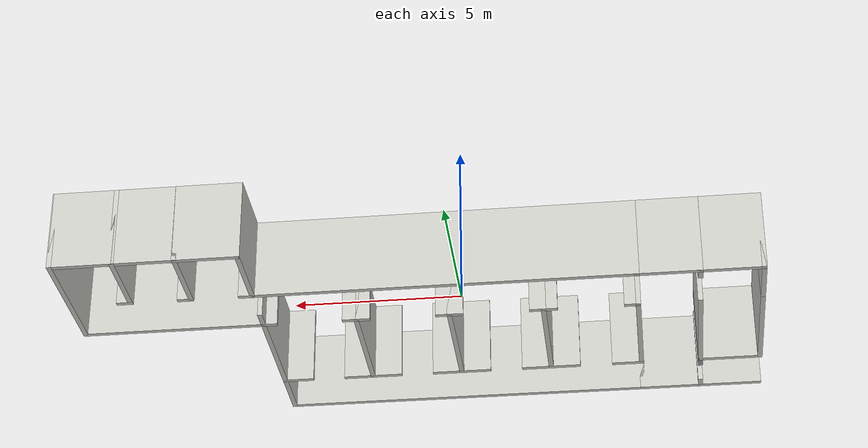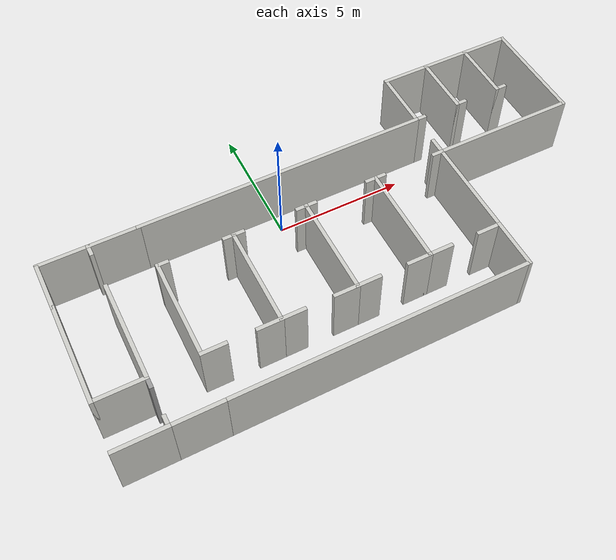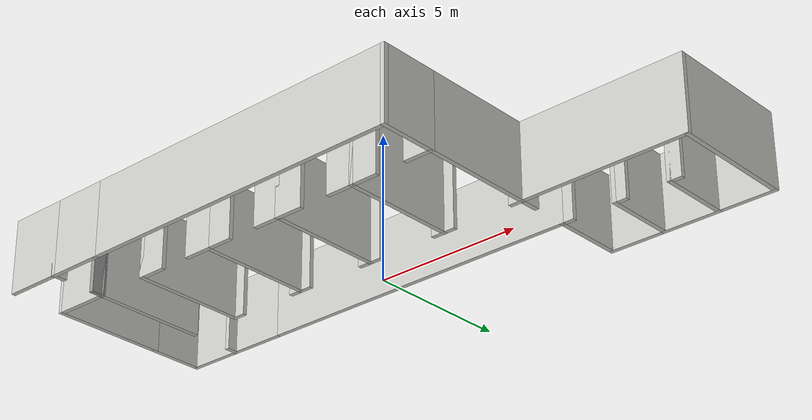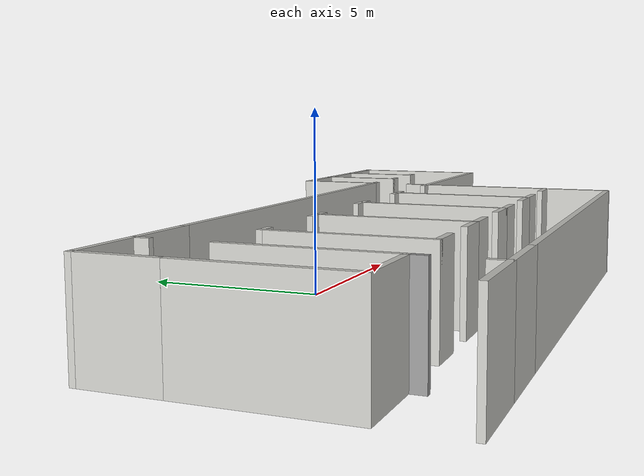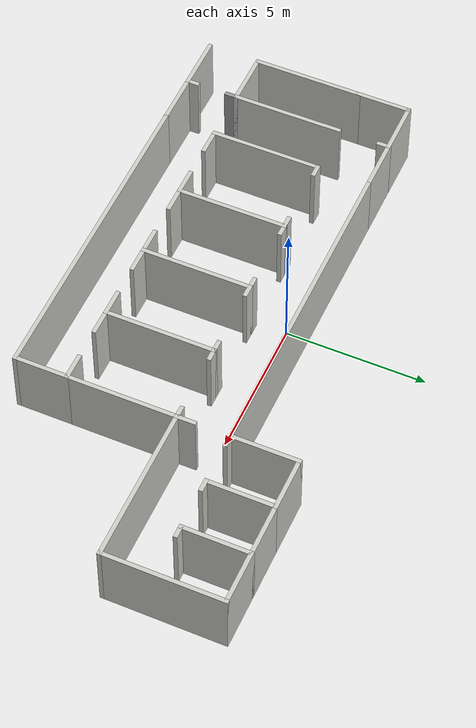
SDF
<?xml version='1.0'?>
<sdf version='1.7'>
  <model name='room'>
    <pose>1.425 -1.87 0 0 -0 0</pose>
    <link name='Wall_108'>
      <collision name='Wall_108_Collision'>
        <geometry>
          <box>
            <size>0.5 0.15 2.5</size>
          </box>
        </geometry>
        <pose>0 0 1.25 0 -0 0</pose>
      </collision>
      <visual name='Wall_108_Visual'>
        <pose>0 0 1.25 0 -0 0</pose>
        <geometry>
          <box>
            <size>0.5 0.15 2.5</size>
          </box>
        </geometry>
        <material>
          <script>
            <uri>file://media/materials/scripts/gazebo.material</uri>
            <name>Gazebo/CeilingTiled</name>
          </script>
          <ambient>0.333333 1 0 1</ambient>
        </material>
        <meta>
          <layer>0</layer>
        </meta>
      </visual>
      <pose>4.95 2.6 0 0 -0 0</pose>
    </link>
    <link name='Wall_11'>
      <collision name='Wall_11_Collision'>
        <geometry>
          <box>
            <size>4 0.15 2.5</size>
          </box>
        </geometry>
        <pose>0 0 1.25 0 -0 0</pose>
      </collision>
      <visual name='Wall_11_Visual'>
        <pose>0 0 1.25 0 -0 0</pose>
        <geometry>
          <box>
            <size>4 0.15 2.5</size>
          </box>
        </geometry>
        <material>
          <script>
            <uri>file://media/materials/scripts/gazebo.material</uri>
            <name>Gazebo/CeilingTiled</name>
          </script>
          <ambient>0.666667 0 0.498039 1</ambient>
        </material>
        <meta>
          <layer>0</layer>
        </meta>
      </visual>
      <pose>4.775 -1.175 0 0 -0 -1.5708</pose>
    </link>
    <link name='Wall_110'>
      <collision name='Wall_110_Collision'>
        <geometry>
          <box>
            <size>0.5 0.15 2.5</size>
          </box>
        </geometry>
        <pose>0 0 1.25 0 -0 0</pose>
      </collision>
      <visual name='Wall_110_Visual'>
        <pose>0 0 1.25 0 -0 0</pose>
        <geometry>
          <box>
            <size>0.5 0.15 2.5</size>
          </box>
        </geometry>
        <material>
          <script>
            <uri>file://media/materials/scripts/gazebo.material</uri>
            <name>Gazebo/CeilingTiled</name>
          </script>
          <ambient>1 0 0.498039 1</ambient>
        </material>
        <meta>
          <layer>0</layer>
        </meta>
      </visual>
      <pose>6.8 2.6 0 0 -0 0</pose>
    </link>
    <link name='Wall_112'>
      <collision name='Wall_112_Collision'>
        <geometry>
          <box>
            <size>0.5 0.15 2.5</size>
          </box>
        </geometry>
        <pose>0 0 1.25 0 -0 0</pose>
      </collision>
      <visual name='Wall_112_Visual'>
        <pose>0 0 1.25 0 -0 0</pose>
        <geometry>
          <box>
            <size>0.5 0.15 2.5</size>
          </box>
        </geometry>
        <material>
          <script>
            <uri>file://media/materials/scripts/gazebo.material</uri>
            <name>Gazebo/CeilingTiled</name>
          </script>
          <ambient>0 1 1 1</ambient>
        </material>
        <meta>
          <layer>0</layer>
        </meta>
      </visual>
      <pose>8.65 2.6 0 0 -0 0</pose>
    </link>
    <link name='Wall_114'>
      <collision name='Wall_114_Collision'>
        <geometry>
          <box>
            <size>4.35 0.15 2.5</size>
          </box>
        </geometry>
        <pose>0 0 1.25 0 -0 0</pose>
      </collision>
      <visual name='Wall_114_Visual'>
        <pose>0 0 1.25 0 -0 0</pose>
        <geometry>
          <box>
            <size>4.35 0.15 2.5</size>
          </box>
        </geometry>
        <material>
          <script>
            <uri>file://media/materials/scripts/gazebo.material</uri>
            <name>Gazebo/CeilingTiled</name>
          </script>
          <ambient>0 0 0 1</ambient>
        </material>
        <meta>
          <layer>0</layer>
        </meta>
      </visual>
      <pose>10.325 2.85 0 0 -0 -1.5708</pose>
    </link>
    <link name='Wall_15'>
      <collision name='Wall_15_Collision'>
        <geometry>
          <box>
            <size>4 0.15 2.5</size>
          </box>
        </geometry>
        <pose>0 0 1.25 0 -0 0</pose>
      </collision>
      <visual name='Wall_15_Visual'>
        <pose>0 0 1.25 0 -0 0</pose>
        <geometry>
          <box>
            <size>4 0.15 2.5</size>
          </box>
        </geometry>
        <material>
          <script>
            <uri>file://media/materials/scripts/gazebo.material</uri>
            <name>Gazebo/CeilingTiled</name>
          </script>
          <ambient>1 0 0 1</ambient>
        </material>
        <meta>
          <layer>0</layer>
        </meta>
      </visual>
      <pose>-6.625 -1.175 0 0 -0 -1.5708</pose>
    </link>
    <link name='Wall_151'>
      <collision name='Wall_151_Collision'>
        <geometry>
          <box>
            <size>2 0.15 2.5</size>
          </box>
        </geometry>
        <pose>0 0 1.25 0 -0 0</pose>
      </collision>
      <visual name='Wall_151_Visual'>
        <pose>0 0 1.25 0 -0 0</pose>
        <geometry>
          <box>
            <size>2 0.15 2.5</size>
          </box>
        </geometry>
        <material>
          <script>
            <uri>file://media/materials/scripts/gazebo.material</uri>
            <name>Gazebo/CeilingTiled</name>
          </script>
          <ambient>0 0 0 1</ambient>
        </material>
        <meta>
          <layer>0</layer>
        </meta>
      </visual>
      <pose>-9.4 2.6 0 0 -0 3.14159</pose>
    </link>
    <link name='Wall_153'>
      <collision name='Wall_153_Collision'>
        <geometry>
          <box>
            <size>2 0.15 2.5</size>
          </box>
        </geometry>
        <pose>0 0 1.25 0 -0 0</pose>
      </collision>
      <visual name='Wall_153_Visual'>
        <pose>0 0 1.25 0 -0 0</pose>
        <geometry>
          <box>
            <size>2 0.15 2.5</size>
          </box>
        </geometry>
        <material>
          <script>
            <uri>file://media/materials/scripts/gazebo.material</uri>
            <name>Gazebo/CeilingTiled</name>
          </script>
          <ambient>0 0 0 1</ambient>
        </material>
        <meta>
          <layer>0</layer>
        </meta>
      </visual>
      <pose>-10.325 1.675 0 0 -0 -1.5708</pose>
    </link>
    <link name='Wall_159'>
      <collision name='Wall_159_Collision'>
        <geometry>
          <box>
            <size>2 0.15 2.5</size>
          </box>
        </geometry>
        <pose>0 0 1.25 0 -0 0</pose>
      </collision>
      <visual name='Wall_159_Visual'>
        <pose>0 0 1.25 0 -0 0</pose>
        <geometry>
          <box>
            <size>2 0.15 2.5</size>
          </box>
        </geometry>
        <material>
          <script>
            <uri>file://media/materials/scripts/gazebo.material</uri>
            <name>Gazebo/CeilingTiled</name>
          </script>
          <ambient>0 0 0 1</ambient>
        </material>
        <meta>
          <layer>0</layer>
        </meta>
      </visual>
      <pose>-9.4 -4.95 0 0 -0 3.14159</pose>
    </link>
    <link name='Wall_163'>
      <collision name='Wall_163_Collision'>
        <geometry>
          <box>
            <size>2 0.15 2.5</size>
          </box>
        </geometry>
        <pose>0 0 1.25 0 -0 0</pose>
      </collision>
      <visual name='Wall_163_Visual'>
        <pose>0 0 1.25 0 -0 0</pose>
        <geometry>
          <box>
            <size>2 0.15 2.5</size>
          </box>
        </geometry>
        <material>
          <script>
            <uri>file://media/materials/scripts/gazebo.material</uri>
            <name>Gazebo/CeilingTiled</name>
          </script>
          <ambient>0 0 0 1</ambient>
        </material>
        <meta>
          <layer>0</layer>
        </meta>
      </visual>
      <pose>-9.4 -3.1 0 0 -0 0</pose>
    </link>
    <link name='Wall_165'>
      <collision name='Wall_165_Collision'>
        <geometry>
          <box>
            <size>0.5 0.15 2.5</size>
          </box>
        </geometry>
        <pose>0 0 1.25 0 -0 0</pose>
      </collision>
      <visual name='Wall_165_Visual'>
        <pose>0 0 1.25 0 -0 0</pose>
        <geometry>
          <box>
            <size>0.5 0.15 2.5</size>
          </box>
        </geometry>
        <material>
          <script>
            <uri>file://media/materials/scripts/gazebo.material</uri>
            <name>Gazebo/Grey</name>
          </script>
          <ambient>0 0 0 1</ambient>
        </material>
        <meta>
          <layer>0</layer>
        </meta>
      </visual>
      <pose>-8.475 -3.275 0 0 -0 -1.5708</pose>
    </link>
    <link name='Wall_167'>
      <collision name='Wall_167_Collision'>
        <geometry>
          <box>
            <size>0.5 0.15 2.5</size>
          </box>
        </geometry>
        <pose>0 0 1.25 0 -0 0</pose>
      </collision>
      <visual name='Wall_167_Visual'>
        <pose>0 0 1.25 0 -0 0</pose>
        <geometry>
          <box>
            <size>0.5 0.15 2.5</size>
          </box>
        </geometry>
        <material>
          <script>
            <uri>file://media/materials/scripts/gazebo.material</uri>
            <name>Gazebo/CeilingTiled</name>
          </script>
          <ambient>0 0 0 1</ambient>
        </material>
        <meta>
          <layer>0</layer>
        </meta>
      </visual>
      <pose>-8.475 -4.775 0 0 -0 1.5708</pose>
    </link>
    <link name='Wall_169'>
      <collision name='Wall_169_Collision'>
        <geometry>
          <box>
            <size>4 0.15 2.5</size>
          </box>
        </geometry>
        <pose>0 0 1.25 0 -0 0</pose>
      </collision>
      <visual name='Wall_169_Visual'>
        <pose>0 0 1.25 0 -0 0</pose>
        <geometry>
          <box>
            <size>4 0.15 2.5</size>
          </box>
        </geometry>
        <material>
          <script>
            <uri>file://media/materials/scripts/gazebo.material</uri>
            <name>Gazebo/CeilingTiled</name>
          </script>
          <ambient>0 0 0 1</ambient>
        </material>
        <meta>
          <layer>0</layer>
        </meta>
      </visual>
      <pose>-8.475 -1.175 0 0 -0 -1.5708</pose>
    </link>
    <link name='Wall_171'>
      <collision name='Wall_171_Collision'>
        <geometry>
          <box>
            <size>4 0.15 2.5</size>
          </box>
        </geometry>
        <pose>0 0 1.25 0 -0 0</pose>
      </collision>
      <visual name='Wall_171_Visual'>
        <pose>0 0 1.25 0 -0 0</pose>
        <geometry>
          <box>
            <size>4 0.15 2.5</size>
          </box>
        </geometry>
        <material>
          <script>
            <uri>file://media/materials/scripts/gazebo.material</uri>
            <name>Gazebo/CeilingTiled</name>
          </script>
          <ambient>0 0 0 1</ambient>
        </material>
        <meta>
          <layer>0</layer>
        </meta>
      </visual>
      <pose>-10.325 -1.175 0 0 -0 -1.5708</pose>
    </link>
    <link name='Wall_173'>
      <collision name='Wall_173_Collision'>
        <geometry>
          <box>
            <size>0.5 0.15 2.5</size>
          </box>
        </geometry>
        <pose>0 0 1.25 0 -0 0</pose>
      </collision>
      <visual name='Wall_173_Visual'>
        <pose>0 0 1.25 0 -0 0</pose>
        <geometry>
          <box>
            <size>0.5 0.15 2.5</size>
          </box>
        </geometry>
        <material>
          <script>
            <uri>file://media/materials/scripts/gazebo.material</uri>
            <name>Gazebo/CeilingTiled</name>
          </script>
          <ambient>0 0 0 1</ambient>
        </material>
        <meta>
          <layer>0</layer>
        </meta>
      </visual>
      <pose>-8.475 2.425 0 0 -0 -1.5708</pose>
    </link>
    <link name='Wall_18'>
      <collision name='Wall_18_Collision'>
        <geometry>
          <box>
            <size>2 0.15 2.5</size>
          </box>
        </geometry>
        <pose>0 0 1.25 0 -0 0</pose>
      </collision>
      <visual name='Wall_18_Visual'>
        <pose>0 0 1.25 0 -0 0</pose>
        <geometry>
          <box>
            <size>2 0.15 2.5</size>
          </box>
        </geometry>
        <material>
          <script>
            <uri>file://media/materials/scripts/gazebo.material</uri>
            <name>Gazebo/CeilingTiled</name>
          </script>
          <ambient>0 0 0 1</ambient>
        </material>
        <meta>
          <layer>0</layer>
        </meta>
      </visual>
      <pose>4.775 -4.025 0 0 -0 -1.5708</pose>
    </link>
    <link name='Wall_2'>
      <collision name='Wall_2_Collision'>
        <geometry>
          <box>
            <size>4 0.15 2.5</size>
          </box>
        </geometry>
        <pose>0 0 1.25 0 -0 0</pose>
      </collision>
      <visual name='Wall_2_Visual'>
        <pose>0 0 1.25 0 -0 0</pose>
        <geometry>
          <box>
            <size>4 0.15 2.5</size>
          </box>
        </geometry>
        <material>
          <script>
            <uri>file://media/materials/scripts/gazebo.material</uri>
            <name>Gazebo/CeilingTiled</name>
          </script>
          <ambient>0.333333 0.666667 1 1</ambient>
        </material>
        <meta>
          <layer>0</layer>
        </meta>
      </visual>
      <pose>-3.775 -1.175 0 0 -0 -1.5708</pose>
    </link>
    <link name='Wall_22'>
      <collision name='Wall_22_Collision'>
        <geometry>
          <box>
            <size>11.55 0.15 2.5</size>
          </box>
        </geometry>
        <pose>0 0 1.25 0 -0 0</pose>
      </collision>
      <visual name='Wall_22_Visual'>
        <pose>0 0 1.25 0 -0 0</pose>
        <geometry>
          <box>
            <size>11.55 0.15 2.5</size>
          </box>
        </geometry>
        <material>
          <script>
            <uri>file://media/materials/scripts/gazebo.material</uri>
            <name>Gazebo/CeilingTiled</name>
          </script>
          <ambient>0 0 0 1</ambient>
        </material>
        <meta>
          <layer>0</layer>
        </meta>
      </visual>
      <pose>-0.925 -4.95 0 0 -0 0</pose>
    </link>
    <link name='Wall_27'>
      <collision name='Wall_27_Collision'>
        <geometry>
          <box>
            <size>11.55 0.15 2.5</size>
          </box>
        </geometry>
        <pose>0 0 1.25 0 -0 0</pose>
      </collision>
      <visual name='Wall_27_Visual'>
        <pose>0 0 1.25 0 -0 0</pose>
        <geometry>
          <box>
            <size>11.55 0.15 2.5</size>
          </box>
        </geometry>
        <material>
          <script>
            <uri>file://media/materials/scripts/gazebo.material</uri>
            <name>Gazebo/CeilingTiled</name>
          </script>
          <ambient>0 0 0 1</ambient>
        </material>
        <meta>
          <layer>0</layer>
        </meta>
      </visual>
      <pose>-0.925 2.6 0 0 -0 3.14159</pose>
    </link>
    <link name='Wall_32'>
      <collision name='Wall_32_Collision'>
        <geometry>
          <box>
            <size>2 0.15 2.5</size>
          </box>
        </geometry>
        <pose>0 0 1.25 0 -0 0</pose>
      </collision>
      <visual name='Wall_32_Visual'>
        <pose>0 0 1.25 0 -0 0</pose>
        <geometry>
          <box>
            <size>2 0.15 2.5</size>
          </box>
        </geometry>
        <material>
          <script>
            <uri>file://media/materials/scripts/gazebo.material</uri>
            <name>Gazebo/CeilingTiled</name>
          </script>
          <ambient>0 0 0 1</ambient>
        </material>
        <meta>
          <layer>0</layer>
        </meta>
      </visual>
      <pose>-7.55 2.6 0 0 -0 3.14159</pose>
    </link>
    <link name='Wall_34'>
      <collision name='Wall_34_Collision'>
        <geometry>
          <box>
            <size>2 0.15 2.5</size>
          </box>
        </geometry>
        <pose>0 0 1.25 0 -0 0</pose>
      </collision>
      <visual name='Wall_34_Visual'>
        <pose>0 0 1.25 0 -0 0</pose>
        <geometry>
          <box>
            <size>2 0.15 2.5</size>
          </box>
        </geometry>
        <material>
          <script>
            <uri>file://media/materials/scripts/gazebo.material</uri>
            <name>Gazebo/CeilingTiled</name>
          </script>
          <ambient>0 0 0 1</ambient>
        </material>
        <meta>
          <layer>0</layer>
        </meta>
      </visual>
      <pose>-7.55 -4.95 0 0 -0 3.14159</pose>
    </link>
    <link name='Wall_37'>
      <collision name='Wall_37_Collision'>
        <geometry>
          <box>
            <size>1 0.15 2.5</size>
          </box>
        </geometry>
        <pose>0 0 1.25 0 -0 0</pose>
      </collision>
      <visual name='Wall_37_Visual'>
        <pose>0 0 1.25 0 -0 0</pose>
        <geometry>
          <box>
            <size>1 0.15 2.5</size>
          </box>
        </geometry>
        <material>
          <script>
            <uri>file://media/materials/scripts/gazebo.material</uri>
            <name>Gazebo/CeilingTiled</name>
          </script>
          <ambient>1 0 0 1</ambient>
        </material>
        <meta>
          <layer>0</layer>
        </meta>
      </visual>
      <pose>-6.2 -3.1 0 0 -0 0</pose>
    </link>
    <link name='Wall_39'>
      <collision name='Wall_39_Collision'>
        <geometry>
          <box>
            <size>1 0.15 2.5</size>
          </box>
        </geometry>
        <pose>0 0 1.25 0 -0 0</pose>
      </collision>
      <visual name='Wall_39_Visual'>
        <pose>0 0 1.25 0 -0 0</pose>
        <geometry>
          <box>
            <size>1 0.15 2.5</size>
          </box>
        </geometry>
        <material>
          <script>
            <uri>file://media/materials/scripts/gazebo.material</uri>
            <name>Gazebo/CeilingTiled</name>
          </script>
          <ambient>1 0 0 1</ambient>
        </material>
        <meta>
          <layer>0</layer>
        </meta>
      </visual>
      <pose>-4.2 -3.1 0 0 -0 3.14159</pose>
    </link>
    <link name='Wall_4'>
      <collision name='Wall_4_Collision'>
        <geometry>
          <box>
            <size>4 0.15 2.5</size>
          </box>
        </geometry>
        <pose>0 0 1.25 0 -0 0</pose>
      </collision>
      <visual name='Wall_4_Visual'>
        <pose>0 0 1.25 0 -0 0</pose>
        <geometry>
          <box>
            <size>4 0.15 2.5</size>
          </box>
        </geometry>
        <material>
          <script>
            <uri>file://media/materials/scripts/gazebo.material</uri>
            <name>Gazebo/CeilingTiled</name>
          </script>
          <ambient>1 0.666667 0 1</ambient>
        </material>
        <meta>
          <layer>0</layer>
        </meta>
      </visual>
      <pose>-0.925 -1.175 0 0 -0 1.5708</pose>
    </link>
    <link name='Wall_41'>
      <collision name='Wall_41_Collision'>
        <geometry>
          <box>
            <size>1 0.15 2.5</size>
          </box>
        </geometry>
        <pose>0 0 1.25 0 -0 0</pose>
      </collision>
      <visual name='Wall_41_Visual'>
        <pose>0 0 1.25 0 -0 0</pose>
        <geometry>
          <box>
            <size>1 0.15 2.5</size>
          </box>
        </geometry>
        <material>
          <script>
            <uri>file://media/materials/scripts/gazebo.material</uri>
            <name>Gazebo/CeilingTiled</name>
          </script>
          <ambient>0.333333 0.666667 1 1</ambient>
        </material>
        <meta>
          <layer>0</layer>
        </meta>
      </visual>
      <pose>-3.35 -3.1 0 0 -0 0</pose>
    </link>
    <link name='Wall_43'>
      <collision name='Wall_43_Collision'>
        <geometry>
          <box>
            <size>1 0.15 2.5</size>
          </box>
        </geometry>
        <pose>0 0 1.25 0 -0 0</pose>
      </collision>
      <visual name='Wall_43_Visual'>
        <pose>0 0 1.25 0 -0 0</pose>
        <geometry>
          <box>
            <size>1 0.15 2.5</size>
          </box>
        </geometry>
        <material>
          <script>
            <uri>file://media/materials/scripts/gazebo.material</uri>
            <name>Gazebo/CeilingTiled</name>
          </script>
          <ambient>0.333333 0.666667 1 1</ambient>
        </material>
        <meta>
          <layer>0</layer>
        </meta>
      </visual>
      <pose>-1.35 -3.1 0 0 -0 3.14159</pose>
    </link>
    <link name='Wall_45'>
      <collision name='Wall_45_Collision'>
        <geometry>
          <box>
            <size>1 0.15 2.5</size>
          </box>
        </geometry>
        <pose>0 0 1.25 0 -0 0</pose>
      </collision>
      <visual name='Wall_45_Visual'>
        <pose>0 0 1.25 0 -0 0</pose>
        <geometry>
          <box>
            <size>1 0.15 2.5</size>
          </box>
        </geometry>
        <material>
          <script>
            <uri>file://media/materials/scripts/gazebo.material</uri>
            <name>Gazebo/CeilingTiled</name>
          </script>
          <ambient>1 0.666667 0 1</ambient>
        </material>
        <meta>
          <layer>0</layer>
        </meta>
      </visual>
      <pose>-0.5 -3.1 0 0 -0 0</pose>
    </link>
    <link name='Wall_47'>
      <collision name='Wall_47_Collision'>
        <geometry>
          <box>
            <size>1 0.15 2.5</size>
          </box>
        </geometry>
        <pose>0 0 1.25 0 -0 0</pose>
      </collision>
      <visual name='Wall_47_Visual'>
        <pose>0 0 1.25 0 -0 0</pose>
        <geometry>
          <box>
            <size>1 0.15 2.5</size>
          </box>
        </geometry>
        <material>
          <script>
            <uri>file://media/materials/scripts/gazebo.material</uri>
            <name>Gazebo/CeilingTiled</name>
          </script>
          <ambient>1 0.666667 0 1</ambient>
        </material>
        <meta>
          <layer>0</layer>
        </meta>
      </visual>
      <pose>1.5 -3.1 0 0 -0 3.14159</pose>
    </link>
    <link name='Wall_49'>
      <collision name='Wall_49_Collision'>
        <geometry>
          <box>
            <size>1 0.15 2.5</size>
          </box>
        </geometry>
        <pose>0 0 1.25 0 -0 0</pose>
      </collision>
      <visual name='Wall_49_Visual'>
        <pose>0 0 1.25 0 -0 0</pose>
        <geometry>
          <box>
            <size>1 0.15 2.5</size>
          </box>
        </geometry>
        <material>
          <script>
            <uri>file://media/materials/scripts/gazebo.material</uri>
            <name>Gazebo/CeilingTiled</name>
          </script>
          <ambient>0.666667 0 0.498039 1</ambient>
        </material>
        <meta>
          <layer>0</layer>
        </meta>
      </visual>
      <pose>2.35 -3.1 0 0 -0 0</pose>
    </link>
    <link name='Wall_51'>
      <collision name='Wall_51_Collision'>
        <geometry>
          <box>
            <size>1 0.15 2.5</size>
          </box>
        </geometry>
        <pose>0 0 1.25 0 -0 0</pose>
      </collision>
      <visual name='Wall_51_Visual'>
        <pose>0 0 1.25 0 -0 0</pose>
        <geometry>
          <box>
            <size>1 0.15 2.5</size>
          </box>
        </geometry>
        <material>
          <script>
            <uri>file://media/materials/scripts/gazebo.material</uri>
            <name>Gazebo/CeilingTiled</name>
          </script>
          <ambient>0.666667 0 0.498039 1</ambient>
        </material>
        <meta>
          <layer>0</layer>
        </meta>
      </visual>
      <pose>4.35 -3.1 0 0 -0 3.14159</pose>
    </link>
    <link name='Wall_53'>
      <collision name='Wall_53_Collision'>
        <geometry>
          <box>
            <size>0.5 0.15 2.5</size>
          </box>
        </geometry>
        <pose>0 0 1.25 0 -0 0</pose>
      </collision>
      <visual name='Wall_53_Visual'>
        <pose>0 0 1.25 0 -0 0</pose>
        <geometry>
          <box>
            <size>0.5 0.15 2.5</size>
          </box>
        </geometry>
        <material>
          <script>
            <uri>file://media/materials/scripts/gazebo.material</uri>
            <name>Gazebo/CeilingTiled</name>
          </script>
          <ambient>1 0 0 1</ambient>
        </material>
        <meta>
          <layer>0</layer>
        </meta>
      </visual>
      <pose>-3.95 0.75 0 0 -0 3.14159</pose>
    </link>
    <link name='Wall_55'>
      <collision name='Wall_55_Collision'>
        <geometry>
          <box>
            <size>0.5 0.15 2.5</size>
          </box>
        </geometry>
        <pose>0 0 1.25 0 -0 0</pose>
      </collision>
      <visual name='Wall_55_Visual'>
        <pose>0 0 1.25 0 -0 0</pose>
        <geometry>
          <box>
            <size>0.5 0.15 2.5</size>
          </box>
        </geometry>
        <material>
          <script>
            <uri>file://media/materials/scripts/gazebo.material</uri>
            <name>Gazebo/CeilingTiled</name>
          </script>
          <ambient>1 0 0 1</ambient>
        </material>
        <meta>
          <layer>0</layer>
        </meta>
      </visual>
      <pose>-6.45 0.75 0 0 -0 0</pose>
    </link>
    <link name='Wall_57'>
      <collision name='Wall_57_Collision'>
        <geometry>
          <box>
            <size>0.5 0.15 2.5</size>
          </box>
        </geometry>
        <pose>0 0 1.25 0 -0 0</pose>
      </collision>
      <visual name='Wall_57_Visual'>
        <pose>0 0 1.25 0 -0 0</pose>
        <geometry>
          <box>
            <size>0.5 0.15 2.5</size>
          </box>
        </geometry>
        <material>
          <script>
            <uri>file://media/materials/scripts/gazebo.material</uri>
            <name>Gazebo/CeilingTiled</name>
          </script>
          <ambient>0.333333 0.666667 1 1</ambient>
        </material>
        <meta>
          <layer>0</layer>
        </meta>
      </visual>
      <pose>-3.6 0.75 0 0 -0 0</pose>
    </link>
    <link name='Wall_59'>
      <collision name='Wall_59_Collision'>
        <geometry>
          <box>
            <size>0.5 0.15 2.5</size>
          </box>
        </geometry>
        <pose>0 0 1.25 0 -0 0</pose>
      </collision>
      <visual name='Wall_59_Visual'>
        <pose>0 0 1.25 0 -0 0</pose>
        <geometry>
          <box>
            <size>0.5 0.15 2.5</size>
          </box>
        </geometry>
        <material>
          <script>
            <uri>file://media/materials/scripts/gazebo.material</uri>
            <name>Gazebo/CeilingTiled</name>
          </script>
          <ambient>0.333333 0.666667 1 1</ambient>
        </material>
        <meta>
          <layer>0</layer>
        </meta>
      </visual>
      <pose>-1.1 0.75 0 0 -0 3.14159</pose>
    </link>
    <link name='Wall_61'>
      <collision name='Wall_61_Collision'>
        <geometry>
          <box>
            <size>0.5 0.15 2.5</size>
          </box>
        </geometry>
        <pose>0 0 1.25 0 -0 0</pose>
      </collision>
      <visual name='Wall_61_Visual'>
        <pose>0 0 1.25 0 -0 0</pose>
        <geometry>
          <box>
            <size>0.5 0.15 2.5</size>
          </box>
        </geometry>
        <material>
          <script>
            <uri>file://media/materials/scripts/gazebo.material</uri>
            <name>Gazebo/CeilingTiled</name>
          </script>
          <ambient>1 0.666667 0 1</ambient>
        </material>
        <meta>
          <layer>0</layer>
        </meta>
      </visual>
      <pose>-0.75 0.75 0 0 -0 0</pose>
    </link>
    <link name='Wall_63'>
      <collision name='Wall_63_Collision'>
        <geometry>
          <box>
            <size>0.5 0.15 2.5</size>
          </box>
        </geometry>
        <pose>0 0 1.25 0 -0 0</pose>
      </collision>
      <visual name='Wall_63_Visual'>
        <pose>0 0 1.25 0 -0 0</pose>
        <geometry>
          <box>
            <size>0.5 0.15 2.5</size>
          </box>
        </geometry>
        <material>
          <script>
            <uri>file://media/materials/scripts/gazebo.material</uri>
            <name>Gazebo/CeilingTiled</name>
          </script>
          <ambient>1 0.666667 0 1</ambient>
        </material>
        <meta>
          <layer>0</layer>
        </meta>
      </visual>
      <pose>1.75 0.75 0 0 -0 3.14159</pose>
    </link>
    <link name='Wall_65'>
      <collision name='Wall_65_Collision'>
        <geometry>
          <box>
            <size>0.5 0.15 2.5</size>
          </box>
        </geometry>
        <pose>0 0 1.25 0 -0 0</pose>
      </collision>
      <visual name='Wall_65_Visual'>
        <pose>0 0 1.25 0 -0 0</pose>
        <geometry>
          <box>
            <size>0.5 0.15 2.5</size>
          </box>
        </geometry>
        <material>
          <script>
            <uri>file://media/materials/scripts/gazebo.material</uri>
            <name>Gazebo/CeilingTiled</name>
          </script>
          <ambient>0.666667 0 0.498039 1</ambient>
        </material>
        <meta>
          <layer>0</layer>
        </meta>
      </visual>
      <pose>2.1 0.75 0 0 -0 0</pose>
    </link>
    <link name='Wall_67'>
      <collision name='Wall_67_Collision'>
        <geometry>
          <box>
            <size>0.5 0.15 2.5</size>
          </box>
        </geometry>
        <pose>0 0 1.25 0 -0 0</pose>
      </collision>
      <visual name='Wall_67_Visual'>
        <pose>0 0 1.25 0 -0 0</pose>
        <geometry>
          <box>
            <size>0.5 0.15 2.5</size>
          </box>
        </geometry>
        <material>
          <script>
            <uri>file://media/materials/scripts/gazebo.material</uri>
            <name>Gazebo/CeilingTiled</name>
          </script>
          <ambient>0.666667 0 0.498039 1</ambient>
        </material>
        <meta>
          <layer>0</layer>
        </meta>
      </visual>
      <pose>4.6 0.75 0 0 -0 3.14159</pose>
    </link>
    <link name='Wall_7'>
      <collision name='Wall_7_Collision'>
        <geometry>
          <box>
            <size>4 0.15 2.5</size>
          </box>
        </geometry>
        <pose>0 0 1.25 0 -0 0</pose>
      </collision>
      <visual name='Wall_7_Visual'>
        <pose>0 0 1.25 0 -0 0</pose>
        <geometry>
          <box>
            <size>4 0.15 2.5</size>
          </box>
        </geometry>
        <material>
          <script>
            <uri>file://media/materials/scripts/gazebo.material</uri>
            <name>Gazebo/CeilingTiled</name>
          </script>
          <ambient>0.666667 0 0.498039 1</ambient>
        </material>
        <meta>
          <layer>0</layer>
        </meta>
      </visual>
      <pose>1.925 -1.175 0 0 -0 -1.5708</pose>
    </link>
    <link name='Wall_81'>
      <collision name='Wall_81_Collision'>
        <geometry>
          <box>
            <size>0.75 0.15 2.5</size>
          </box>
        </geometry>
        <pose>0 0 1.25 0 -0 0</pose>
      </collision>
      <visual name='Wall_81_Visual'>
        <pose>0 0 1.25 0 -0 0</pose>
        <geometry>
          <box>
            <size>0.75 0.15 2.5</size>
          </box>
        </geometry>
        <material>
          <script>
            <uri>file://media/materials/scripts/gazebo.material</uri>
            <name>Gazebo/CeilingTiled</name>
          </script>
          <ambient>0 0 0 1</ambient>
        </material>
        <meta>
          <layer>0</layer>
        </meta>
      </visual>
      <pose>4.775 1.05 0 0 -0 1.5708</pose>
    </link>
    <link name='Wall_84'>
      <collision name='Wall_84_Collision'>
        <geometry>
          <box>
            <size>2.5 0.15 2.5</size>
          </box>
        </geometry>
        <pose>0 0 1.25 0 -0 0</pose>
      </collision>
      <visual name='Wall_84_Visual'>
        <pose>0 0 1.25 0 -0 0</pose>
        <geometry>
          <box>
            <size>2.5 0.15 2.5</size>
          </box>
        </geometry>
        <material>
          <script>
            <uri>file://media/materials/scripts/gazebo.material</uri>
            <name>Gazebo/CeilingTiled</name>
          </script>
          <ambient>0 0 0 1</ambient>
        </material>
        <meta>
          <layer>0</layer>
        </meta>
      </visual>
      <pose>4.775 3.775 0 0 -0 1.5708</pose>
    </link>
    <link name='Wall_85'>
      <collision name='Wall_85_Collision'>
        <geometry>
          <box>
            <size>2 0.15 2.5</size>
          </box>
        </geometry>
        <pose>0 0 1.25 0 -0 0</pose>
      </collision>
      <visual name='Wall_85_Visual'>
        <pose>0 0 1.25 0 -0 0</pose>
        <geometry>
          <box>
            <size>2 0.15 2.5</size>
          </box>
        </geometry>
        <material>
          <script>
            <uri>file://media/materials/scripts/gazebo.material</uri>
            <name>Gazebo/CeilingTiled</name>
          </script>
          <ambient>0.333333 1 0 1</ambient>
        </material>
        <meta>
          <layer>0</layer>
        </meta>
      </visual>
      <pose>5.7 4.95 0 0 -0 0</pose>
    </link>
    <link name='Wall_86'>
      <collision name='Wall_86_Collision'>
        <geometry>
          <box>
            <size>2.5 0.15 2.5</size>
          </box>
        </geometry>
        <pose>0 0 1.25 0 -0 0</pose>
      </collision>
      <visual name='Wall_86_Visual'>
        <pose>0 0 1.25 0 -0 0</pose>
        <geometry>
          <box>
            <size>2.5 0.15 2.5</size>
          </box>
        </geometry>
        <material>
          <script>
            <uri>file://media/materials/scripts/gazebo.material</uri>
            <name>Gazebo/CeilingTiled</name>
          </script>
          <ambient>0 0 0 1</ambient>
        </material>
        <meta>
          <layer>0</layer>
        </meta>
      </visual>
      <pose>6.625 3.775 0 0 -0 -1.5708</pose>
    </link>
    <link name='Wall_88'>
      <collision name='Wall_88_Collision'>
        <geometry>
          <box>
            <size>2 0.15 2.5</size>
          </box>
        </geometry>
        <pose>0 0 1.25 0 -0 0</pose>
      </collision>
      <visual name='Wall_88_Visual'>
        <pose>0 0 1.25 0 -0 0</pose>
        <geometry>
          <box>
            <size>2 0.15 2.5</size>
          </box>
        </geometry>
        <material>
          <script>
            <uri>file://media/materials/scripts/gazebo.material</uri>
            <name>Gazebo/CeilingTiled</name>
          </script>
          <ambient>1 0 0.498039 1</ambient>
        </material>
        <meta>
          <layer>0</layer>
        </meta>
      </visual>
      <pose>7.55 4.95 0 0 -0 0</pose>
    </link>
    <link name='Wall_89'>
      <collision name='Wall_89_Collision'>
        <geometry>
          <box>
            <size>2.5 0.15 2.5</size>
          </box>
        </geometry>
        <pose>0 0 1.25 0 -0 0</pose>
      </collision>
      <visual name='Wall_89_Visual'>
        <pose>0 0 1.25 0 -0 0</pose>
        <geometry>
          <box>
            <size>2.5 0.15 2.5</size>
          </box>
        </geometry>
        <material>
          <script>
            <uri>file://media/materials/scripts/gazebo.material</uri>
            <name>Gazebo/CeilingTiled</name>
          </script>
          <ambient>0 0 0 1</ambient>
        </material>
        <meta>
          <layer>0</layer>
        </meta>
      </visual>
      <pose>8.475 3.775 0 0 -0 -1.5708</pose>
    </link>
    <link name='Wall_91'>
      <collision name='Wall_91_Collision'>
        <geometry>
          <box>
            <size>2 0.15 2.5</size>
          </box>
        </geometry>
        <pose>0 0 1.25 0 -0 0</pose>
      </collision>
      <visual name='Wall_91_Visual'>
        <pose>0 0 1.25 0 -0 0</pose>
        <geometry>
          <box>
            <size>2 0.15 2.5</size>
          </box>
        </geometry>
        <material>
          <script>
            <uri>file://media/materials/scripts/gazebo.material</uri>
            <name>Gazebo/CeilingTiled</name>
          </script>
          <ambient>0 1 1 1</ambient>
        </material>
        <meta>
          <layer>0</layer>
        </meta>
      </visual>
      <pose>9.4 4.95 0 0 -0 0</pose>
    </link>
    <link name='Wall_97'>
      <collision name='Wall_97_Collision'>
        <geometry>
          <box>
            <size>5.7 0.15 2.5</size>
          </box>
        </geometry>
        <pose>0 0 1.25 0 -0 0</pose>
      </collision>
      <visual name='Wall_97_Visual'>
        <pose>0 0 1.25 0 -0 0</pose>
        <geometry>
          <box>
            <size>5.7 0.15 2.5</size>
          </box>
        </geometry>
        <material>
          <script>
            <uri>file://media/materials/scripts/gazebo.material</uri>
            <name>Gazebo/CeilingTiled</name>
          </script>
          <ambient>0 0 0 1</ambient>
        </material>
        <meta>
          <layer>0</layer>
        </meta>
      </visual>
      <pose>7.55 0.75 0 0 -0 3.14159</pose>
    </link>
    <static>1</static>
  </model>
</sdf>
